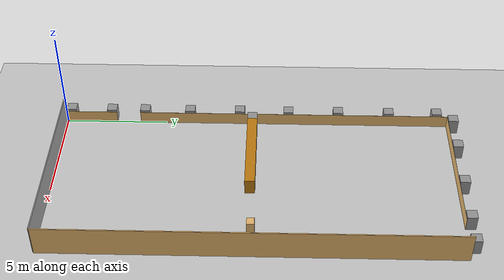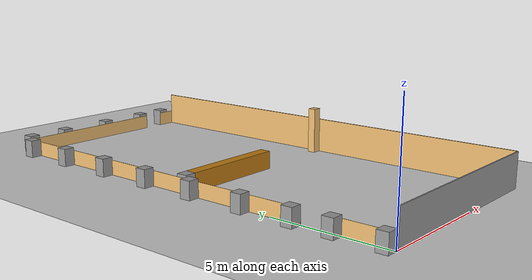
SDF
<sdf version="1.7">
 <world name="default">
  <light name="sun" type="directional">
   <pose>0 0 10 0 -0 0</pose>
   <diffuse>0.8 0.8 0.8 1</diffuse>
   <specular>0.2 0.2 0.2 1</specular>
   <attenuation>
    <range>1000</range>
    <constant>0.9</constant>
    <linear>0.01</linear>
    <quadratic>0.001</quadratic>
   </attenuation>
   <direction>-0.5 0.1 -0.9</direction>
   <spot><inner_angle>0</inner_angle><outer_angle>0</outer_angle><falloff>0</falloff></spot>
  </light>
  <model name="ground_plane">
   <static>1</static>
   <link name="link">
    <collision name="collision">
     <geometry><plane><normal>0 0 1</normal><size>100 100</size></plane></geometry>
     <surface>
      <contact><collide_bitmask>65535</collide_bitmask></contact>
      <friction><ode><mu>100</mu><mu2>50</mu2></ode></friction>
     </surface>
    </collision>
    <visual name="visual">
     <cast_shadows>0</cast_shadows>
     <geometry><plane><normal>0 0 1</normal><size>100 100</size></plane></geometry>
     <material>
      <script><uri>file://media/materials/scripts/gazebo.material</uri><name>Gazebo/Grey</name></script>
     </material>
    </visual>
   </link>
  </model>
  <gravity>0 0 -9.8</gravity>
  <magnetic_field>6e-06 2.3e-05 -4.2e-05</magnetic_field>
  <atmosphere type="adiabatic"/>
  <physics type="ode">
   <max_step_size>0.001</max_step_size>
   <real_time_factor>1</real_time_factor>
   <real_time_update_rate>1000</real_time_update_rate>
  </physics>
  <scene><ambient>0.4 0.4 0.4 1</ambient><background>0.7 0.7 0.7 1</background><shadows>1</shadows></scene>
  <spherical_coordinates>
   <surface_model>EARTH_WGS84</surface_model>
   <latitude_deg>0</latitude_deg>
   <longitude_deg>0</longitude_deg>
   <elevation>0</elevation>
   <heading_deg>0</heading_deg>
  </spherical_coordinates>
  <model name="Cardboard_Bin">
   <link name="link_0">
    <inertial>
     <mass>1</mass>
     <inertia>
      <ixx>0.166667</ixx>
      <ixy>0</ixy>
      <ixz>0</ixz>
      <iyy>0.166667</iyy>
      <iyz>0</iyz>
      <izz>0.166667</izz>
     </inertia>
    </inertial>
    <visual name="visual">
     <geometry><box><size>0.48 0.48 0.762</size></box></geometry>
     <material>
      <lighting>1</lighting>
      <script><uri>file://media/materials/scripts/gazebo.material</uri><name>Gazebo/Grey</name></script>
      <shader type="pixel"><normal_map>__default__</normal_map></shader>
      <ambient>0.953 0.953 0.953 1</ambient>
      <diffuse>0.933 0.933 0.925 1</diffuse>
      <specular>0.933 0.933 0.925 1</specular>
      <emissive>0 0 0 1</emissive>
     </material>
    </visual>
    <collision name="collision">
     <geometry><box><size>0.48 0.48 0.762</size></box></geometry>
     <surface>
      <friction>
       <ode><mu>1</mu><mu2>1</mu2><fdir1>0 0 0</fdir1><slip1>0</slip1><slip2>0</slip2></ode>
       <torsional>
        <coefficient>1</coefficient>
        <patch_radius>0</patch_radius>
        <surface_radius>0</surface_radius>
        <use_patch_radius>1</use_patch_radius>
        <ode><slip>0</slip></ode>
       </torsional>
      </friction>
      <bounce><restitution_coefficient>0</restitution_coefficient><threshold>1e+06</threshold></bounce>
      <contact>
       <collide_without_contact>0</collide_without_contact>
       <collide_without_contact_bitmask>1</collide_without_contact_bitmask>
       <collide_bitmask>1</collide_bitmask>
       <ode>
        <soft_cfm>0</soft_cfm>
        <soft_erp>0.2</soft_erp>
        <kp>1e+13</kp>
        <kd>1</kd>
        <max_vel>0.01</max_vel>
        <min_depth>0</min_depth>
       </ode>
       <bullet>
        <split_impulse>1</split_impulse>
        <split_impulse_penetration_threshold>-0.01</split_impulse_penetration_threshold>
        <soft_cfm>0</soft_cfm>
        <soft_erp>0.2</soft_erp>
        <kp>1e+13</kp>
        <kd>1</kd>
       </bullet>
      </contact>
     </surface>
    </collision>
   </link>
   <static>1</static>
   <pose>-0.244 0.24 0.381 0 -0 0</pose>
  </model>
  <model name="Cardboard_Bin_clone_11">
   <link name="link_0">
    <inertial>
     <mass>1</mass>
     <inertia>
      <ixx>0.166667</ixx>
      <ixy>0</ixy>
      <ixz>0</ixz>
      <iyy>0.166667</iyy>
      <iyz>0</iyz>
      <izz>0.166667</izz>
     </inertia>
    </inertial>
    <visual name="visual">
     <geometry><box><size>0.48 0.48 0.762</size></box></geometry>
     <material>
      <lighting>1</lighting>
      <script><uri>file://media/materials/scripts/gazebo.material</uri><name>Gazebo/Grey</name></script>
      <shader type="pixel"><normal_map>__default__</normal_map></shader>
      <ambient>0.953 0.953 0.953 1</ambient>
      <diffuse>0.933 0.933 0.925 1</diffuse>
      <specular>0.933 0.933 0.925 1</specular>
      <emissive>0 0 0 1</emissive>
     </material>
    </visual>
    <collision name="collision">
     <geometry><box><size>0.48 0.48 0.762</size></box></geometry>
     <surface>
      <friction>
       <ode><mu>1</mu><mu2>1</mu2><fdir1>0 0 0</fdir1><slip1>0</slip1><slip2>0</slip2></ode>
       <torsional>
        <coefficient>1</coefficient>
        <patch_radius>0</patch_radius>
        <surface_radius>0</surface_radius>
        <use_patch_radius>1</use_patch_radius>
        <ode><slip>0</slip></ode>
       </torsional>
      </friction>
      <bounce><restitution_coefficient>0</restitution_coefficient><threshold>1e+06</threshold></bounce>
      <contact>
       <collide_without_contact>0</collide_without_contact>
       <collide_without_contact_bitmask>1</collide_without_contact_bitmask>
       <collide_bitmask>1</collide_bitmask>
       <ode>
        <soft_cfm>0</soft_cfm>
        <soft_erp>0.2</soft_erp>
        <kp>1e+13</kp>
        <kd>1</kd>
        <max_vel>0.01</max_vel>
        <min_depth>0</min_depth>
       </ode>
       <bullet>
        <split_impulse>1</split_impulse>
        <split_impulse_penetration_threshold>-0.01</split_impulse_penetration_threshold>
        <soft_cfm>0</soft_cfm>
        <soft_erp>0.2</soft_erp>
        <kp>1e+13</kp>
        <kd>1</kd>
       </bullet>
      </contact>
     </surface>
    </collision>
   </link>
   <static>1</static>
   <pose>-0.244 2.273 0.381 0 -0 0</pose>
  </model>
  <model name="Cardboard_Bin_clone_2">
   <link name="link_0">
    <inertial>
     <mass>1</mass>
     <inertia>
      <ixx>0.166667</ixx>
      <ixy>0</ixy>
      <ixz>0</ixz>
      <iyy>0.166667</iyy>
      <iyz>0</iyz>
      <izz>0.166667</izz>
     </inertia>
    </inertial>
    <visual name="visual">
     <geometry><box><size>0.48 0.48 0.762</size></box></geometry>
     <material>
      <lighting>1</lighting>
      <script><uri>file://media/materials/scripts/gazebo.material</uri><name>Gazebo/Grey</name></script>
      <shader type="pixel"><normal_map>__default__</normal_map></shader>
      <ambient>0.953 0.953 0.953 1</ambient>
      <diffuse>0.933 0.933 0.925 1</diffuse>
      <specular>0.933 0.933 0.925 1</specular>
      <emissive>0 0 0 1</emissive>
     </material>
    </visual>
    <collision name="collision">
     <geometry><box><size>0.48 0.48 0.762</size></box></geometry>
     <surface>
      <friction>
       <ode><mu>1</mu><mu2>1</mu2><fdir1>0 0 0</fdir1><slip1>0</slip1><slip2>0</slip2></ode>
       <torsional>
        <coefficient>1</coefficient>
        <patch_radius>0</patch_radius>
        <surface_radius>0</surface_radius>
        <use_patch_radius>1</use_patch_radius>
        <ode><slip>0</slip></ode>
       </torsional>
      </friction>
      <bounce><restitution_coefficient>0</restitution_coefficient><threshold>1e+06</threshold></bounce>
      <contact>
       <collide_without_contact>0</collide_without_contact>
       <collide_without_contact_bitmask>1</collide_without_contact_bitmask>
       <collide_bitmask>1</collide_bitmask>
       <ode>
        <soft_cfm>0</soft_cfm>
        <soft_erp>0.2</soft_erp>
        <kp>1e+13</kp>
        <kd>1</kd>
        <max_vel>0.01</max_vel>
        <min_depth>0</min_depth>
       </ode>
       <bullet>
        <split_impulse>1</split_impulse>
        <split_impulse_penetration_threshold>-0.01</split_impulse_penetration_threshold>
        <soft_cfm>0</soft_cfm>
        <soft_erp>0.2</soft_erp>
        <kp>1e+13</kp>
        <kd>1</kd>
       </bullet>
      </contact>
     </surface>
    </collision>
   </link>
   <static>1</static>
   <pose>-0.244 3.938 0.381 0 -0 0</pose>
  </model>
  <model name="Cardboard_Bin_clone_12">
   <link name="link_0">
    <inertial>
     <mass>1</mass>
     <inertia>
      <ixx>0.166667</ixx>
      <ixy>0</ixy>
      <ixz>0</ixz>
      <iyy>0.166667</iyy>
      <iyz>0</iyz>
      <izz>0.166667</izz>
     </inertia>
    </inertial>
    <visual name="visual">
     <geometry><box><size>0.48 0.48 0.762</size></box></geometry>
     <material>
      <lighting>1</lighting>
      <script><uri>file://media/materials/scripts/gazebo.material</uri><name>Gazebo/Grey</name></script>
      <shader type="pixel"><normal_map>__default__</normal_map></shader>
      <ambient>0.953 0.953 0.953 1</ambient>
      <diffuse>0.933 0.933 0.925 1</diffuse>
      <specular>0.933 0.933 0.925 1</specular>
      <emissive>0 0 0 1</emissive>
     </material>
    </visual>
    <collision name="collision">
     <geometry><box><size>0.48 0.48 0.762</size></box></geometry>
     <surface>
      <friction>
       <ode><mu>1</mu><mu2>1</mu2><fdir1>0 0 0</fdir1><slip1>0</slip1><slip2>0</slip2></ode>
       <torsional>
        <coefficient>1</coefficient>
        <patch_radius>0</patch_radius>
        <surface_radius>0</surface_radius>
        <use_patch_radius>1</use_patch_radius>
        <ode><slip>0</slip></ode>
       </torsional>
      </friction>
      <bounce><restitution_coefficient>0</restitution_coefficient><threshold>1e+06</threshold></bounce>
      <contact>
       <collide_without_contact>0</collide_without_contact>
       <collide_without_contact_bitmask>1</collide_without_contact_bitmask>
       <collide_bitmask>1</collide_bitmask>
       <ode>
        <soft_cfm>0</soft_cfm>
        <soft_erp>0.2</soft_erp>
        <kp>1e+13</kp>
        <kd>1</kd>
        <max_vel>0.01</max_vel>
        <min_depth>0</min_depth>
       </ode>
       <bullet>
        <split_impulse>1</split_impulse>
        <split_impulse_penetration_threshold>-0.01</split_impulse_penetration_threshold>
        <soft_cfm>0</soft_cfm>
        <soft_erp>0.2</soft_erp>
        <kp>1e+13</kp>
        <kd>1</kd>
       </bullet>
      </contact>
     </surface>
    </collision>
   </link>
   <static>1</static>
   <pose>-0.244 6.207 0.381 0 -0 0</pose>
  </model>
  <model name="Cardboard_Bin_clone_13">
   <link name="link_0">
    <inertial>
     <mass>1</mass>
     <inertia>
      <ixx>0.166667</ixx>
      <ixy>0</ixy>
      <ixz>0</ixz>
      <iyy>0.166667</iyy>
      <iyz>0</iyz>
      <izz>0.166667</izz>
     </inertia>
    </inertial>
    <visual name="visual">
     <geometry><box><size>0.48 0.48 0.762</size></box></geometry>
     <material>
      <lighting>1</lighting>
      <script><uri>file://media/materials/scripts/gazebo.material</uri><name>Gazebo/Grey</name></script>
      <shader type="pixel"><normal_map>__default__</normal_map></shader>
      <ambient>0.953 0.953 0.953 1</ambient>
      <diffuse>0.933 0.933 0.925 1</diffuse>
      <specular>0.933 0.933 0.925 1</specular>
      <emissive>0 0 0 1</emissive>
     </material>
    </visual>
    <collision name="collision">
     <geometry><box><size>0.48 0.48 0.762</size></box></geometry>
     <surface>
      <friction>
       <ode><mu>1</mu><mu2>1</mu2><fdir1>0 0 0</fdir1><slip1>0</slip1><slip2>0</slip2></ode>
       <torsional>
        <coefficient>1</coefficient>
        <patch_radius>0</patch_radius>
        <surface_radius>0</surface_radius>
        <use_patch_radius>1</use_patch_radius>
        <ode><slip>0</slip></ode>
       </torsional>
      </friction>
      <bounce><restitution_coefficient>0</restitution_coefficient><threshold>1e+06</threshold></bounce>
      <contact>
       <collide_without_contact>0</collide_without_contact>
       <collide_without_contact_bitmask>1</collide_without_contact_bitmask>
       <collide_bitmask>1</collide_bitmask>
       <ode>
        <soft_cfm>0</soft_cfm>
        <soft_erp>0.2</soft_erp>
        <kp>1e+13</kp>
        <kd>1</kd>
        <max_vel>0.01</max_vel>
        <min_depth>0</min_depth>
       </ode>
       <bullet>
        <split_impulse>1</split_impulse>
        <split_impulse_penetration_threshold>-0.01</split_impulse_penetration_threshold>
        <soft_cfm>0</soft_cfm>
        <soft_erp>0.2</soft_erp>
        <kp>1e+13</kp>
        <kd>1</kd>
       </bullet>
      </contact>
     </surface>
    </collision>
   </link>
   <static>1</static>
   <pose>-0.244 8.702 0.381 0 -0 0</pose>
  </model>
  <model name="Cardboard_Bin_clone_14">
   <link name="link_0">
    <inertial>
     <mass>1</mass>
     <inertia>
      <ixx>0.166667</ixx>
      <ixy>0</ixy>
      <ixz>0</ixz>
      <iyy>0.166667</iyy>
      <iyz>0</iyz>
      <izz>0.166667</izz>
     </inertia>
    </inertial>
    <visual name="visual">
     <geometry><box><size>0.48 0.48 0.762</size></box></geometry>
     <material>
      <lighting>1</lighting>
      <script><uri>file://media/materials/scripts/gazebo.material</uri><name>Gazebo/Grey</name></script>
      <shader type="pixel"><normal_map>__default__</normal_map></shader>
      <ambient>0.953 0.953 0.953 1</ambient>
      <diffuse>0.933 0.933 0.925 1</diffuse>
      <specular>0.933 0.933 0.925 1</specular>
      <emissive>0 0 0 1</emissive>
     </material>
    </visual>
    <collision name="collision">
     <geometry><box><size>0.48 0.48 0.762</size></box></geometry>
     <surface>
      <friction>
       <ode><mu>1</mu><mu2>1</mu2><fdir1>0 0 0</fdir1><slip1>0</slip1><slip2>0</slip2></ode>
       <torsional>
        <coefficient>1</coefficient>
        <patch_radius>0</patch_radius>
        <surface_radius>0</surface_radius>
        <use_patch_radius>1</use_patch_radius>
        <ode><slip>0</slip></ode>
       </torsional>
      </friction>
      <bounce><restitution_coefficient>0</restitution_coefficient><threshold>1e+06</threshold></bounce>
      <contact>
       <collide_without_contact>0</collide_without_contact>
       <collide_without_contact_bitmask>1</collide_without_contact_bitmask>
       <collide_bitmask>1</collide_bitmask>
       <ode>
        <soft_cfm>0</soft_cfm>
        <soft_erp>0.2</soft_erp>
        <kp>1e+13</kp>
        <kd>1</kd>
        <max_vel>0.01</max_vel>
        <min_depth>0</min_depth>
       </ode>
       <bullet>
        <split_impulse>1</split_impulse>
        <split_impulse_penetration_threshold>-0.01</split_impulse_penetration_threshold>
        <soft_cfm>0</soft_cfm>
        <soft_erp>0.2</soft_erp>
        <kp>1e+13</kp>
        <kd>1</kd>
       </bullet>
      </contact>
     </surface>
    </collision>
   </link>
   <static>1</static>
   <pose>-0.244 11.143 0.381 0 -0 0</pose>
  </model>
  <model name="Cardboard_Bin_clone_6">
   <link name="link_0">
    <inertial>
     <mass>1</mass>
     <inertia>
      <ixx>0.166667</ixx>
      <ixy>0</ixy>
      <ixz>0</ixz>
      <iyy>0.166667</iyy>
      <iyz>0</iyz>
      <izz>0.166667</izz>
     </inertia>
    </inertial>
    <visual name="visual">
     <geometry><box><size>0.48 0.48 0.762</size></box></geometry>
     <material>
      <lighting>1</lighting>
      <script><uri>file://media/materials/scripts/gazebo.material</uri><name>Gazebo/Grey</name></script>
      <shader type="pixel"><normal_map>__default__</normal_map></shader>
      <ambient>0.953 0.953 0.953 1</ambient>
      <diffuse>0.933 0.933 0.925 1</diffuse>
      <specular>0.933 0.933 0.925 1</specular>
      <emissive>0 0 0 1</emissive>
     </material>
    </visual>
    <collision name="collision">
     <geometry><box><size>0.48 0.48 0.762</size></box></geometry>
     <surface>
      <friction>
       <ode><mu>1</mu><mu2>1</mu2><fdir1>0 0 0</fdir1><slip1>0</slip1><slip2>0</slip2></ode>
       <torsional>
        <coefficient>1</coefficient>
        <patch_radius>0</patch_radius>
        <surface_radius>0</surface_radius>
        <use_patch_radius>1</use_patch_radius>
        <ode><slip>0</slip></ode>
       </torsional>
      </friction>
      <bounce><restitution_coefficient>0</restitution_coefficient><threshold>1e+06</threshold></bounce>
      <contact>
       <collide_without_contact>0</collide_without_contact>
       <collide_without_contact_bitmask>1</collide_without_contact_bitmask>
       <collide_bitmask>1</collide_bitmask>
       <ode>
        <soft_cfm>0</soft_cfm>
        <soft_erp>0.2</soft_erp>
        <kp>1e+13</kp>
        <kd>1</kd>
        <max_vel>0.01</max_vel>
        <min_depth>0</min_depth>
       </ode>
       <bullet>
        <split_impulse>1</split_impulse>
        <split_impulse_penetration_threshold>-0.01</split_impulse_penetration_threshold>
        <soft_cfm>0</soft_cfm>
        <soft_erp>0.2</soft_erp>
        <kp>1e+13</kp>
        <kd>1</kd>
       </bullet>
      </contact>
     </surface>
    </collision>
   </link>
   <static>1</static>
   <pose>-0.244 13.627 0.381 0 -0 0</pose>
  </model>
  <model name="Cardboard_Bin_clone_5">
   <link name="link_0">
    <inertial>
     <mass>1</mass>
     <inertia>
      <ixx>0.166667</ixx>
      <ixy>0</ixy>
      <ixz>0</ixz>
      <iyy>0.166667</iyy>
      <iyz>0</iyz>
      <izz>0.166667</izz>
     </inertia>
    </inertial>
    <visual name="visual">
     <geometry><box><size>0.48 0.48 0.762</size></box></geometry>
     <material>
      <lighting>1</lighting>
      <script><uri>file://media/materials/scripts/gazebo.material</uri><name>Gazebo/Grey</name></script>
      <shader type="pixel"><normal_map>__default__</normal_map></shader>
      <ambient>0.953 0.953 0.953 1</ambient>
      <diffuse>0.933 0.933 0.925 1</diffuse>
      <specular>0.933 0.933 0.925 1</specular>
      <emissive>0 0 0 1</emissive>
     </material>
    </visual>
    <collision name="collision">
     <geometry><box><size>0.48 0.48 0.762</size></box></geometry>
     <surface>
      <friction>
       <ode><mu>1</mu><mu2>1</mu2><fdir1>0 0 0</fdir1><slip1>0</slip1><slip2>0</slip2></ode>
       <torsional>
        <coefficient>1</coefficient>
        <patch_radius>0</patch_radius>
        <surface_radius>0</surface_radius>
        <use_patch_radius>1</use_patch_radius>
        <ode><slip>0</slip></ode>
       </torsional>
      </friction>
      <bounce><restitution_coefficient>0</restitution_coefficient><threshold>1e+06</threshold></bounce>
      <contact>
       <collide_without_contact>0</collide_without_contact>
       <collide_without_contact_bitmask>1</collide_without_contact_bitmask>
       <collide_bitmask>1</collide_bitmask>
       <ode>
        <soft_cfm>0</soft_cfm>
        <soft_erp>0.2</soft_erp>
        <kp>1e+13</kp>
        <kd>1</kd>
        <max_vel>0.01</max_vel>
        <min_depth>0</min_depth>
       </ode>
       <bullet>
        <split_impulse>1</split_impulse>
        <split_impulse_penetration_threshold>-0.01</split_impulse_penetration_threshold>
        <soft_cfm>0</soft_cfm>
        <soft_erp>0.2</soft_erp>
        <kp>1e+13</kp>
        <kd>1</kd>
       </bullet>
      </contact>
     </surface>
    </collision>
   </link>
   <static>1</static>
   <pose>-0.244 16.151 0.381 0 -0 0</pose>
  </model>
  <model name="Cardboard_Bin_clone_4">
   <link name="link_0">
    <inertial>
     <mass>1</mass>
     <inertia>
      <ixx>0.166667</ixx>
      <ixy>0</ixy>
      <ixz>0</ixz>
      <iyy>0.166667</iyy>
      <iyz>0</iyz>
      <izz>0.166667</izz>
     </inertia>
    </inertial>
    <visual name="visual">
     <geometry><box><size>0.48 0.48 0.762</size></box></geometry>
     <material>
      <lighting>1</lighting>
      <script><uri>file://media/materials/scripts/gazebo.material</uri><name>Gazebo/Grey</name></script>
      <shader type="pixel"><normal_map>__default__</normal_map></shader>
      <ambient>0.953 0.953 0.953 1</ambient>
      <diffuse>0.933 0.933 0.925 1</diffuse>
      <specular>0.933 0.933 0.925 1</specular>
      <emissive>0 0 0 1</emissive>
     </material>
    </visual>
    <collision name="collision">
     <geometry><box><size>0.48 0.48 0.762</size></box></geometry>
     <surface>
      <friction>
       <ode><mu>1</mu><mu2>1</mu2><fdir1>0 0 0</fdir1><slip1>0</slip1><slip2>0</slip2></ode>
       <torsional>
        <coefficient>1</coefficient>
        <patch_radius>0</patch_radius>
        <surface_radius>0</surface_radius>
        <use_patch_radius>1</use_patch_radius>
        <ode><slip>0</slip></ode>
       </torsional>
      </friction>
      <bounce><restitution_coefficient>0</restitution_coefficient><threshold>1e+06</threshold></bounce>
      <contact>
       <collide_without_contact>0</collide_without_contact>
       <collide_without_contact_bitmask>1</collide_without_contact_bitmask>
       <collide_bitmask>1</collide_bitmask>
       <ode>
        <soft_cfm>0</soft_cfm>
        <soft_erp>0.2</soft_erp>
        <kp>1e+13</kp>
        <kd>1</kd>
        <max_vel>0.01</max_vel>
        <min_depth>0</min_depth>
       </ode>
       <bullet>
        <split_impulse>1</split_impulse>
        <split_impulse_penetration_threshold>-0.01</split_impulse_penetration_threshold>
        <soft_cfm>0</soft_cfm>
        <soft_erp>0.2</soft_erp>
        <kp>1e+13</kp>
        <kd>1</kd>
       </bullet>
      </contact>
     </surface>
    </collision>
   </link>
   <static>1</static>
   <pose>-0.244 18.549 0.381 0 -0 0</pose>
  </model>
  <model name="Cardboard_Bin_clone_3">
   <link name="link_0">
    <inertial>
     <mass>1</mass>
     <inertia>
      <ixx>0.166667</ixx>
      <ixy>0</ixy>
      <ixz>0</ixz>
      <iyy>0.166667</iyy>
      <iyz>0</iyz>
      <izz>0.166667</izz>
     </inertia>
    </inertial>
    <visual name="visual">
     <geometry><box><size>0.48 0.48 0.762</size></box></geometry>
     <material>
      <lighting>1</lighting>
      <script><uri>file://media/materials/scripts/gazebo.material</uri><name>Gazebo/Grey</name></script>
      <shader type="pixel"><normal_map>__default__</normal_map></shader>
      <ambient>0.953 0.953 0.953 1</ambient>
      <diffuse>0.933 0.933 0.925 1</diffuse>
      <specular>0.933 0.933 0.925 1</specular>
      <emissive>0 0 0 1</emissive>
     </material>
    </visual>
    <collision name="collision">
     <geometry><box><size>0.48 0.48 0.762</size></box></geometry>
     <surface>
      <friction>
       <ode><mu>1</mu><mu2>1</mu2><fdir1>0 0 0</fdir1><slip1>0</slip1><slip2>0</slip2></ode>
       <torsional>
        <coefficient>1</coefficient>
        <patch_radius>0</patch_radius>
        <surface_radius>0</surface_radius>
        <use_patch_radius>1</use_patch_radius>
        <ode><slip>0</slip></ode>
       </torsional>
      </friction>
      <bounce><restitution_coefficient>0</restitution_coefficient><threshold>1e+06</threshold></bounce>
      <contact>
       <collide_without_contact>0</collide_without_contact>
       <collide_without_contact_bitmask>1</collide_without_contact_bitmask>
       <collide_bitmask>1</collide_bitmask>
       <ode>
        <soft_cfm>0</soft_cfm>
        <soft_erp>0.2</soft_erp>
        <kp>1e+13</kp>
        <kd>1</kd>
        <max_vel>0.01</max_vel>
        <min_depth>0</min_depth>
       </ode>
       <bullet>
        <split_impulse>1</split_impulse>
        <split_impulse_penetration_threshold>-0.01</split_impulse_penetration_threshold>
        <soft_cfm>0</soft_cfm>
        <soft_erp>0.2</soft_erp>
        <kp>1e+13</kp>
        <kd>1</kd>
       </bullet>
      </contact>
     </surface>
    </collision>
   </link>
   <static>1</static>
   <pose>0.24 19.324 0.381 0 -0 0</pose>
  </model>
  <model name="Cardboard_Bin_clone_1">
   <link name="link_0">
    <inertial>
     <mass>1</mass>
     <inertia>
      <ixx>0.166667</ixx>
      <ixy>0</ixy>
      <ixz>0</ixz>
      <iyy>0.166667</iyy>
      <iyz>0</iyz>
      <izz>0.166667</izz>
     </inertia>
    </inertial>
    <visual name="visual">
     <geometry><box><size>0.48 0.48 0.762</size></box></geometry>
     <material>
      <lighting>1</lighting>
      <script><uri>file://media/materials/scripts/gazebo.material</uri><name>Gazebo/Grey</name></script>
      <shader type="pixel"><normal_map>__default__</normal_map></shader>
      <ambient>0.953 0.953 0.953 1</ambient>
      <diffuse>0.933 0.933 0.925 1</diffuse>
      <specular>0.933 0.933 0.925 1</specular>
      <emissive>0 0 0 1</emissive>
     </material>
    </visual>
    <collision name="collision">
     <geometry><box><size>0.48 0.48 0.762</size></box></geometry>
     <surface>
      <friction>
       <ode><mu>1</mu><mu2>1</mu2><fdir1>0 0 0</fdir1><slip1>0</slip1><slip2>0</slip2></ode>
       <torsional>
        <coefficient>1</coefficient>
        <patch_radius>0</patch_radius>
        <surface_radius>0</surface_radius>
        <use_patch_radius>1</use_patch_radius>
        <ode><slip>0</slip></ode>
       </torsional>
      </friction>
      <bounce><restitution_coefficient>0</restitution_coefficient><threshold>1e+06</threshold></bounce>
      <contact>
       <collide_without_contact>0</collide_without_contact>
       <collide_without_contact_bitmask>1</collide_without_contact_bitmask>
       <collide_bitmask>1</collide_bitmask>
       <ode>
        <soft_cfm>0</soft_cfm>
        <soft_erp>0.2</soft_erp>
        <kp>1e+13</kp>
        <kd>1</kd>
        <max_vel>0.01</max_vel>
        <min_depth>0</min_depth>
       </ode>
       <bullet>
        <split_impulse>1</split_impulse>
        <split_impulse_penetration_threshold>-0.01</split_impulse_penetration_threshold>
        <soft_cfm>0</soft_cfm>
        <soft_erp>0.2</soft_erp>
        <kp>1e+13</kp>
        <kd>1</kd>
       </bullet>
      </contact>
     </surface>
    </collision>
   </link>
   <static>1</static>
   <pose>2.104 19.324 0.381 0 -0 0</pose>
  </model>
  <model name="Cardboard_Bin_clone_7">
   <link name="link_0">
    <inertial>
     <mass>1</mass>
     <inertia>
      <ixx>0.166667</ixx>
      <ixy>0</ixy>
      <ixz>0</ixz>
      <iyy>0.166667</iyy>
      <iyz>0</iyz>
      <izz>0.166667</izz>
     </inertia>
    </inertial>
    <visual name="visual">
     <geometry><box><size>0.48 0.48 0.762</size></box></geometry>
     <material>
      <lighting>1</lighting>
      <script><uri>file://media/materials/scripts/gazebo.material</uri><name>Gazebo/Grey</name></script>
      <shader type="pixel"><normal_map>__default__</normal_map></shader>
      <ambient>0.953 0.953 0.953 1</ambient>
      <diffuse>0.933 0.933 0.925 1</diffuse>
      <specular>0.933 0.933 0.925 1</specular>
      <emissive>0 0 0 1</emissive>
     </material>
    </visual>
    <collision name="collision">
     <geometry><box><size>0.48 0.48 0.762</size></box></geometry>
     <surface>
      <friction>
       <ode><mu>1</mu><mu2>1</mu2><fdir1>0 0 0</fdir1><slip1>0</slip1><slip2>0</slip2></ode>
       <torsional>
        <coefficient>1</coefficient>
        <patch_radius>0</patch_radius>
        <surface_radius>0</surface_radius>
        <use_patch_radius>1</use_patch_radius>
        <ode><slip>0</slip></ode>
       </torsional>
      </friction>
      <bounce><restitution_coefficient>0</restitution_coefficient><threshold>1e+06</threshold></bounce>
      <contact>
       <collide_without_contact>0</collide_without_contact>
       <collide_without_contact_bitmask>1</collide_without_contact_bitmask>
       <collide_bitmask>1</collide_bitmask>
       <ode>
        <soft_cfm>0</soft_cfm>
        <soft_erp>0.2</soft_erp>
        <kp>1e+13</kp>
        <kd>1</kd>
        <max_vel>0.01</max_vel>
        <min_depth>0</min_depth>
       </ode>
       <bullet>
        <split_impulse>1</split_impulse>
        <split_impulse_penetration_threshold>-0.01</split_impulse_penetration_threshold>
        <soft_cfm>0</soft_cfm>
        <soft_erp>0.2</soft_erp>
        <kp>1e+13</kp>
        <kd>1</kd>
       </bullet>
      </contact>
     </surface>
    </collision>
   </link>
   <static>1</static>
   <pose>4.583 19.324 0.381 0 -0 0</pose>
  </model>
  <model name="Cardboard_Bin_clone_8">
   <link name="link_0">
    <inertial>
     <mass>1</mass>
     <inertia>
      <ixx>0.166667</ixx>
      <ixy>0</ixy>
      <ixz>0</ixz>
      <iyy>0.166667</iyy>
      <iyz>0</iyz>
      <izz>0.166667</izz>
     </inertia>
    </inertial>
    <visual name="visual">
     <geometry><box><size>0.48 0.48 0.762</size></box></geometry>
     <material>
      <lighting>1</lighting>
      <script><uri>file://media/materials/scripts/gazebo.material</uri><name>Gazebo/Grey</name></script>
      <shader type="pixel"><normal_map>__default__</normal_map></shader>
      <ambient>0.953 0.953 0.953 1</ambient>
      <diffuse>0.933 0.933 0.925 1</diffuse>
      <specular>0.933 0.933 0.925 1</specular>
      <emissive>0 0 0 1</emissive>
     </material>
    </visual>
    <collision name="collision">
     <geometry><box><size>0.48 0.48 0.762</size></box></geometry>
     <surface>
      <friction>
       <ode><mu>1</mu><mu2>1</mu2><fdir1>0 0 0</fdir1><slip1>0</slip1><slip2>0</slip2></ode>
       <torsional>
        <coefficient>1</coefficient>
        <patch_radius>0</patch_radius>
        <surface_radius>0</surface_radius>
        <use_patch_radius>1</use_patch_radius>
        <ode><slip>0</slip></ode>
       </torsional>
      </friction>
      <bounce><restitution_coefficient>0</restitution_coefficient><threshold>1e+06</threshold></bounce>
      <contact>
       <collide_without_contact>0</collide_without_contact>
       <collide_without_contact_bitmask>1</collide_without_contact_bitmask>
       <collide_bitmask>1</collide_bitmask>
       <ode>
        <soft_cfm>0</soft_cfm>
        <soft_erp>0.2</soft_erp>
        <kp>1e+13</kp>
        <kd>1</kd>
        <max_vel>0.01</max_vel>
        <min_depth>0</min_depth>
       </ode>
       <bullet>
        <split_impulse>1</split_impulse>
        <split_impulse_penetration_threshold>-0.01</split_impulse_penetration_threshold>
        <soft_cfm>0</soft_cfm>
        <soft_erp>0.2</soft_erp>
        <kp>1e+13</kp>
        <kd>1</kd>
       </bullet>
      </contact>
     </surface>
    </collision>
   </link>
   <static>1</static>
   <pose>6.853 19.324 0.381 0 -0 0</pose>
  </model>
  <model name="Cardboard_Bin_clone_9">
   <link name="link_0">
    <inertial>
     <mass>1</mass>
     <inertia>
      <ixx>0.166667</ixx>
      <ixy>0</ixy>
      <ixz>0</ixz>
      <iyy>0.166667</iyy>
      <iyz>0</iyz>
      <izz>0.166667</izz>
     </inertia>
    </inertial>
    <visual name="visual">
     <geometry><box><size>0.48 0.48 0.762</size></box></geometry>
     <material>
      <lighting>1</lighting>
      <script><uri>file://media/materials/scripts/gazebo.material</uri><name>Gazebo/Grey</name></script>
      <shader type="pixel"><normal_map>__default__</normal_map></shader>
      <ambient>0.953 0.953 0.953 1</ambient>
      <diffuse>0.933 0.933 0.925 1</diffuse>
      <specular>0.933 0.933 0.925 1</specular>
      <emissive>0 0 0 1</emissive>
     </material>
    </visual>
    <collision name="collision">
     <geometry><box><size>0.48 0.48 0.762</size></box></geometry>
     <surface>
      <friction>
       <ode><mu>1</mu><mu2>1</mu2><fdir1>0 0 0</fdir1><slip1>0</slip1><slip2>0</slip2></ode>
       <torsional>
        <coefficient>1</coefficient>
        <patch_radius>0</patch_radius>
        <surface_radius>0</surface_radius>
        <use_patch_radius>1</use_patch_radius>
        <ode><slip>0</slip></ode>
       </torsional>
      </friction>
      <bounce><restitution_coefficient>0</restitution_coefficient><threshold>1e+06</threshold></bounce>
      <contact>
       <collide_without_contact>0</collide_without_contact>
       <collide_without_contact_bitmask>1</collide_without_contact_bitmask>
       <collide_bitmask>1</collide_bitmask>
       <ode>
        <soft_cfm>0</soft_cfm>
        <soft_erp>0.2</soft_erp>
        <kp>1e+13</kp>
        <kd>1</kd>
        <max_vel>0.01</max_vel>
        <min_depth>0</min_depth>
       </ode>
       <bullet>
        <split_impulse>1</split_impulse>
        <split_impulse_penetration_threshold>-0.01</split_impulse_penetration_threshold>
        <soft_cfm>0</soft_cfm>
        <soft_erp>0.2</soft_erp>
        <kp>1e+13</kp>
        <kd>1</kd>
       </bullet>
      </contact>
     </surface>
    </collision>
   </link>
   <static>1</static>
   <pose>6.853 19.324 0.381 0 -0 0</pose>
  </model>
  <model name="Cardboard_Bin_clone_10">
   <link name="link_0">
    <inertial>
     <mass>1</mass>
     <inertia>
      <ixx>0.166667</ixx>
      <ixy>0</ixy>
      <ixz>0</ixz>
      <iyy>0.166667</iyy>
      <iyz>0</iyz>
      <izz>0.166667</izz>
     </inertia>
    </inertial>
    <visual name="visual">
     <geometry><box><size>0.48 0.48 0.762</size></box></geometry>
     <material>
      <lighting>1</lighting>
      <script><uri>file://media/materials/scripts/gazebo.material</uri><name>Gazebo/Grey</name></script>
      <shader type="pixel"><normal_map>__default__</normal_map></shader>
      <ambient>0.953 0.953 0.953 1</ambient>
      <diffuse>0.933 0.933 0.925 1</diffuse>
      <specular>0.933 0.933 0.925 1</specular>
      <emissive>0 0 0 1</emissive>
     </material>
    </visual>
    <collision name="collision">
     <geometry><box><size>0.48 0.48 0.762</size></box></geometry>
     <surface>
      <friction>
       <ode><mu>1</mu><mu2>1</mu2><fdir1>0 0 0</fdir1><slip1>0</slip1><slip2>0</slip2></ode>
       <torsional>
        <coefficient>1</coefficient>
        <patch_radius>0</patch_radius>
        <surface_radius>0</surface_radius>
        <use_patch_radius>1</use_patch_radius>
        <ode><slip>0</slip></ode>
       </torsional>
      </friction>
      <bounce><restitution_coefficient>0</restitution_coefficient><threshold>1e+06</threshold></bounce>
      <contact>
       <collide_without_contact>0</collide_without_contact>
       <collide_without_contact_bitmask>1</collide_without_contact_bitmask>
       <collide_bitmask>1</collide_bitmask>
       <ode>
        <soft_cfm>0</soft_cfm>
        <soft_erp>0.2</soft_erp>
        <kp>1e+13</kp>
        <kd>1</kd>
        <max_vel>0.01</max_vel>
        <min_depth>0</min_depth>
       </ode>
       <bullet>
        <split_impulse>1</split_impulse>
        <split_impulse_penetration_threshold>-0.01</split_impulse_penetration_threshold>
        <soft_cfm>0</soft_cfm>
        <soft_erp>0.2</soft_erp>
        <kp>1e+13</kp>
        <kd>1</kd>
       </bullet>
      </contact>
     </surface>
    </collision>
   </link>
   <static>1</static>
   <pose>8.276 19.324 0.381 0 -0 0</pose>
  </model>
  <model name="Cardboard_Bin_clone_15">
   <link name="link_0">
    <inertial>
     <mass>1</mass>
     <inertia>
      <ixx>0.166667</ixx>
      <ixy>0</ixy>
      <ixz>0</ixz>
      <iyy>0.166667</iyy>
      <iyz>0</iyz>
      <izz>0.166667</izz>
     </inertia>
    </inertial>
    <visual name="visual">
     <geometry><box><size>0.48 0.48 0.762</size></box></geometry>
     <material>
      <lighting>1</lighting>
      <script><uri>file://media/materials/scripts/gazebo.material</uri><name>Gazebo/Grey</name></script>
      <shader type="pixel"><normal_map>__default__</normal_map></shader>
      <ambient>0.953 0.953 0.953 1</ambient>
      <diffuse>0.933 0.933 0.925 1</diffuse>
      <specular>0.933 0.933 0.925 1</specular>
      <emissive>0 0 0 1</emissive>
     </material>
    </visual>
    <collision name="collision">
     <geometry><box><size>0.48 0.48 0.762</size></box></geometry>
     <surface>
      <friction>
       <ode><mu>1</mu><mu2>1</mu2><fdir1>0 0 0</fdir1><slip1>0</slip1><slip2>0</slip2></ode>
       <torsional>
        <coefficient>1</coefficient>
        <patch_radius>0</patch_radius>
        <surface_radius>0</surface_radius>
        <use_patch_radius>1</use_patch_radius>
        <ode><slip>0</slip></ode>
       </torsional>
      </friction>
      <bounce><restitution_coefficient>0</restitution_coefficient><threshold>1e+06</threshold></bounce>
      <contact>
       <collide_without_contact>0</collide_without_contact>
       <collide_without_contact_bitmask>1</collide_without_contact_bitmask>
       <collide_bitmask>1</collide_bitmask>
       <ode>
        <soft_cfm>0</soft_cfm>
        <soft_erp>0.2</soft_erp>
        <kp>1e+13</kp>
        <kd>1</kd>
        <max_vel>0.01</max_vel>
        <min_depth>0</min_depth>
       </ode>
       <bullet>
        <split_impulse>1</split_impulse>
        <split_impulse_penetration_threshold>-0.01</split_impulse_penetration_threshold>
        <soft_cfm>0</soft_cfm>
        <soft_erp>0.2</soft_erp>
        <kp>1e+13</kp>
        <kd>1</kd>
       </bullet>
      </contact>
     </surface>
    </collision>
   </link>
   <static>1</static>
   <pose>0.244 9.344 0.381 0 -0 0</pose>
  </model>
  <model name="Cardboard_Bin_clone_0">
   <link name="link_0">
    <inertial>
     <mass>1</mass>
     <inertia>
      <ixx>0.166667</ixx>
      <ixy>0</ixy>
      <ixz>0</ixz>
      <iyy>0.166667</iyy>
      <iyz>0</iyz>
      <izz>0.166667</izz>
     </inertia>
    </inertial>
    <visual name="visual">
     <geometry><box><size>0.48 0.48 0.762</size></box></geometry>
     <material>
      <lighting>1</lighting>
      <script><uri>file://media/materials/scripts/gazebo.material</uri><name>Gazebo/Grey</name></script>
      <shader type="pixel"><normal_map>__default__</normal_map></shader>
      <ambient>0.953 0.953 0.953 1</ambient>
      <diffuse>0.933 0.933 0.925 1</diffuse>
      <specular>0.933 0.933 0.925 1</specular>
      <emissive>0 0 0 1</emissive>
     </material>
    </visual>
    <collision name="collision">
     <geometry><box><size>0.48 0.48 0.762</size></box></geometry>
     <surface>
      <friction>
       <ode><mu>1</mu><mu2>1</mu2><fdir1>0 0 0</fdir1><slip1>0</slip1><slip2>0</slip2></ode>
       <torsional>
        <coefficient>1</coefficient>
        <patch_radius>0</patch_radius>
        <surface_radius>0</surface_radius>
        <use_patch_radius>1</use_patch_radius>
        <ode><slip>0</slip></ode>
       </torsional>
      </friction>
      <bounce><restitution_coefficient>0</restitution_coefficient><threshold>1e+06</threshold></bounce>
      <contact>
       <collide_without_contact>0</collide_without_contact>
       <collide_without_contact_bitmask>1</collide_without_contact_bitmask>
       <collide_bitmask>1</collide_bitmask>
       <ode>
        <soft_cfm>0</soft_cfm>
        <soft_erp>0.2</soft_erp>
        <kp>1e+13</kp>
        <kd>1</kd>
        <max_vel>0.01</max_vel>
        <min_depth>0</min_depth>
       </ode>
       <bullet>
        <split_impulse>1</split_impulse>
        <split_impulse_penetration_threshold>-0.01</split_impulse_penetration_threshold>
        <soft_cfm>0</soft_cfm>
        <soft_erp>0.2</soft_erp>
        <kp>1e+13</kp>
        <kd>1</kd>
       </bullet>
      </contact>
     </surface>
    </collision>
   </link>
   <static>1</static>
   <pose>8.64 0.24 0.381 0 -0 0</pose>
  </model>
  <model name="Cardboard_Wall_1">
   <link name="link_1">
    <inertial>
     <mass>1</mass>
     <inertia>
      <ixx>0.166667</ixx>
      <ixy>0</ixy>
      <ixz>0</ixz>
      <iyy>0.166667</iyy>
      <iyz>0</iyz>
      <izz>0.166667</izz>
     </inertia>
    </inertial>
    <visual name="visual">
     <geometry><box><size>7.093 0.004 0.635</size></box></geometry>
     <material>
      <lighting>1</lighting>
      <script><uri>file://media/materials/scripts/gazebo.material</uri><name>Gazebo/Grey</name></script>
      <shader type="pixel"><normal_map>__default__</normal_map></shader>
      <ambient>0.914 0.725 0.431 1</ambient>
      <diffuse>0.914 0.725 0.431 1</diffuse>
      <specular>0.914 0.725 0.431 1</specular>
      <emissive>0 0 0 1</emissive>
     </material>
    </visual>
    <collision name="collision">
     <geometry><box><size>7.093 0.004 0.635</size></box></geometry>
     <surface>
      <friction>
       <ode><mu>1</mu><mu2>1</mu2><fdir1>0 0 0</fdir1><slip1>0</slip1><slip2>0</slip2></ode>
       <torsional>
        <coefficient>1</coefficient>
        <patch_radius>0</patch_radius>
        <surface_radius>0</surface_radius>
        <use_patch_radius>1</use_patch_radius>
        <ode><slip>0</slip></ode>
       </torsional>
      </friction>
      <bounce><restitution_coefficient>0</restitution_coefficient><threshold>1e+06</threshold></bounce>
      <contact>
       <collide_without_contact>0</collide_without_contact>
       <collide_without_contact_bitmask>1</collide_without_contact_bitmask>
       <collide_bitmask>1</collide_bitmask>
       <ode>
        <soft_cfm>0</soft_cfm>
        <soft_erp>0.2</soft_erp>
        <kp>1e+13</kp>
        <kd>1</kd>
        <max_vel>0.01</max_vel>
        <min_depth>0</min_depth>
       </ode>
       <bullet>
        <split_impulse>1</split_impulse>
        <split_impulse_penetration_threshold>-0.01</split_impulse_penetration_threshold>
        <soft_cfm>0</soft_cfm>
        <soft_erp>0.2</soft_erp>
        <kp>1e+13</kp>
        <kd>1</kd>
       </bullet>
      </contact>
     </surface>
    </collision>
   </link>
   <static>1</static>
   <pose>3.5465 19.082 0.3175 0 -0 0</pose>
  </model>
  <model name="Cardboard_Wall_2">
   <link name="link_5">
    <inertial>
     <mass>1</mass>
     <inertia>
      <ixx>0.166667</ixx>
      <ixy>0</ixy>
      <ixz>0</ixz>
      <iyy>0.166667</iyy>
      <iyz>0</iyz>
      <izz>0.166667</izz>
     </inertia>
    </inertial>
    <visual name="visual">
     <geometry><box><size>0.845 0.004 0.635</size></box></geometry>
     <material>
      <lighting>1</lighting>
      <script><uri>file://media/materials/scripts/gazebo.material</uri><name>Gazebo/Grey</name></script>
      <shader type="pixel"><normal_map>__default__</normal_map></shader>
      <ambient>0.914 0.725 0.431 1</ambient>
      <diffuse>0.914 0.725 0.431 1</diffuse>
      <specular>0.914 0.725 0.431 1</specular>
      <emissive>0 0 0 1</emissive>
     </material>
    </visual>
    <collision name="collision">
     <geometry><box><size>0.845 0.004 0.635</size></box></geometry>
     <surface>
      <friction>
       <ode><mu>1</mu><mu2>1</mu2><fdir1>0 0 0</fdir1><slip1>0</slip1><slip2>0</slip2></ode>
       <torsional>
        <coefficient>1</coefficient>
        <patch_radius>0</patch_radius>
        <surface_radius>0</surface_radius>
        <use_patch_radius>1</use_patch_radius>
        <ode><slip>0</slip></ode>
       </torsional>
      </friction>
      <bounce><restitution_coefficient>0</restitution_coefficient><threshold>1e+06</threshold></bounce>
      <contact>
       <collide_without_contact>0</collide_without_contact>
       <collide_without_contact_bitmask>1</collide_without_contact_bitmask>
       <collide_bitmask>1</collide_bitmask>
       <ode>
        <soft_cfm>0</soft_cfm>
        <soft_erp>0.2</soft_erp>
        <kp>1e+13</kp>
        <kd>1</kd>
        <max_vel>0.01</max_vel>
        <min_depth>0</min_depth>
       </ode>
       <bullet>
        <split_impulse>1</split_impulse>
        <split_impulse_penetration_threshold>-0.01</split_impulse_penetration_threshold>
        <soft_cfm>0</soft_cfm>
        <soft_erp>0.2</soft_erp>
        <kp>1e+13</kp>
        <kd>1</kd>
       </bullet>
      </contact>
     </surface>
    </collision>
   </link>
   <static>1</static>
   <pose>8.4575 19.082 0.3175 0 -0 0</pose>
  </model>
  <model name="Cardboard_Wall_4">
   <link name="link_7">
    <inertial>
     <mass>1</mass>
     <inertia>
      <ixx>0.166667</ixx>
      <ixy>0</ixy>
      <ixz>0</ixz>
      <iyy>0.166667</iyy>
      <iyz>0</iyz>
      <izz>0.166667</izz>
     </inertia>
    </inertial>
    <visual name="visual">
     <geometry><box><size>0.004 15.382 0.635</size></box></geometry>
     <material>
      <lighting>1</lighting>
      <script><uri>file://media/materials/scripts/gazebo.material</uri><name>Gazebo/Grey</name></script>
      <shader type="pixel"><normal_map>__default__</normal_map></shader>
      <ambient>0.914 0.725 0.431 1</ambient>
      <diffuse>0.914 0.725 0.431 1</diffuse>
      <specular>0.914 0.725 0.431 1</specular>
      <emissive>0 0 0 1</emissive>
     </material>
    </visual>
    <collision name="collision">
     <geometry><box><size>0.004 15.382 0.635</size></box></geometry>
     <surface>
      <friction>
       <ode><mu>1</mu><mu2>1</mu2><fdir1>0 0 0</fdir1><slip1>0</slip1><slip2>0</slip2></ode>
       <torsional>
        <coefficient>1</coefficient>
        <patch_radius>0</patch_radius>
        <surface_radius>0</surface_radius>
        <use_patch_radius>1</use_patch_radius>
        <ode><slip>0</slip></ode>
       </torsional>
      </friction>
      <bounce><restitution_coefficient>0</restitution_coefficient><threshold>1e+06</threshold></bounce>
      <contact>
       <collide_without_contact>0</collide_without_contact>
       <collide_without_contact_bitmask>1</collide_without_contact_bitmask>
       <collide_bitmask>1</collide_bitmask>
       <ode>
        <soft_cfm>0</soft_cfm>
        <soft_erp>0.2</soft_erp>
        <kp>1e+13</kp>
        <kd>1</kd>
        <max_vel>0.01</max_vel>
        <min_depth>0</min_depth>
       </ode>
       <bullet>
        <split_impulse>1</split_impulse>
        <split_impulse_penetration_threshold>-0.01</split_impulse_penetration_threshold>
        <soft_cfm>0</soft_cfm>
        <soft_erp>0.2</soft_erp>
        <kp>1e+13</kp>
        <kd>1</kd>
       </bullet>
      </contact>
     </surface>
    </collision>
   </link>
   <static>1</static>
   <pose>-0.002 11.389 0.3175 0 -0 0</pose>
  </model>
  <model name="Cardboard_Wall_3">
   <link name="link_6">
    <inertial>
     <mass>1</mass>
     <inertia>
      <ixx>0.166667</ixx>
      <ixy>0</ixy>
      <ixz>0</ixz>
      <iyy>0.166667</iyy>
      <iyz>0</iyz>
      <izz>0.166667</izz>
     </inertia>
    </inertial>
    <visual name="visual">
     <geometry><box><size>0.004 2.513 0.635</size></box></geometry>
     <material>
      <lighting>1</lighting>
      <script><uri>file://media/materials/scripts/gazebo.material</uri><name>Gazebo/Grey</name></script>
      <shader type="pixel"><normal_map>__default__</normal_map></shader>
      <ambient>0.914 0.725 0.431 1</ambient>
      <diffuse>0.914 0.725 0.431 1</diffuse>
      <specular>0.914 0.725 0.431 1</specular>
      <emissive>0 0 0 1</emissive>
     </material>
    </visual>
    <collision name="collision">
     <geometry><box><size>0.004 2.513 0.6354</size></box></geometry>
     <surface>
      <friction>
       <ode><mu>1</mu><mu2>1</mu2><fdir1>0 0 0</fdir1><slip1>0</slip1><slip2>0</slip2></ode>
       <torsional>
        <coefficient>1</coefficient>
        <patch_radius>0</patch_radius>
        <surface_radius>0</surface_radius>
        <use_patch_radius>1</use_patch_radius>
        <ode><slip>0</slip></ode>
       </torsional>
      </friction>
      <bounce><restitution_coefficient>0</restitution_coefficient><threshold>1e+06</threshold></bounce>
      <contact>
       <collide_without_contact>0</collide_without_contact>
       <collide_without_contact_bitmask>1</collide_without_contact_bitmask>
       <collide_bitmask>1</collide_bitmask>
       <ode>
        <soft_cfm>0</soft_cfm>
        <soft_erp>0.2</soft_erp>
        <kp>1e+13</kp>
        <kd>1</kd>
        <max_vel>0.01</max_vel>
        <min_depth>0</min_depth>
       </ode>
       <bullet>
        <split_impulse>1</split_impulse>
        <split_impulse_penetration_threshold>-0.01</split_impulse_penetration_threshold>
        <soft_cfm>0</soft_cfm>
        <soft_erp>0.2</soft_erp>
        <kp>1e+13</kp>
        <kd>1</kd>
       </bullet>
      </contact>
     </surface>
    </collision>
   </link>
   <static>1</static>
   <pose>-0.002 1.2565 0.3175 0 -0 0</pose>
  </model>
  <model name="TCS_Drywall">
   <link name="link_8">
    <inertial>
     <mass>1</mass>
     <inertia>
      <ixx>0.166667</ixx>
      <ixy>0</ixy>
      <ixz>0</ixz>
      <iyy>0.166667</iyy>
      <iyz>0</iyz>
      <izz>0.166667</izz>
     </inertia>
    </inertial>
    <visual name="visual">
     <geometry><box><size>8.88 0.05 1.5</size></box></geometry>
     <material>
      <lighting>1</lighting>
      <script><uri>file://media/materials/scripts/gazebo.material</uri><name>Gazebo/Grey</name></script>
      <shader type="pixel"><normal_map>__default__</normal_map></shader>
      <ambient>0.953 0.953 0.953 1</ambient>
      <diffuse>0.953 0.953 0.953 1</diffuse>
      <specular>0.953 0.953 0.953 1</specular>
      <emissive>0 0 0 1</emissive>
     </material>
    </visual>
    <collision name="collision">
     <geometry><box><size>8.88 0.05 1.5</size></box></geometry>
     <surface>
      <friction>
       <ode><mu>1</mu><mu2>1</mu2><fdir1>0 0 0</fdir1><slip1>0</slip1><slip2>0</slip2></ode>
       <torsional>
        <coefficient>1</coefficient>
        <patch_radius>0</patch_radius>
        <surface_radius>0</surface_radius>
        <use_patch_radius>1</use_patch_radius>
        <ode><slip>0</slip></ode>
       </torsional>
      </friction>
      <bounce><restitution_coefficient>0</restitution_coefficient><threshold>1e+06</threshold></bounce>
      <contact>
       <collide_without_contact>0</collide_without_contact>
       <collide_without_contact_bitmask>1</collide_without_contact_bitmask>
       <collide_bitmask>1</collide_bitmask>
       <ode>
        <soft_cfm>0</soft_cfm>
        <soft_erp>0.2</soft_erp>
        <kp>1e+13</kp>
        <kd>1</kd>
        <max_vel>0.01</max_vel>
        <min_depth>0</min_depth>
       </ode>
       <bullet>
        <split_impulse>1</split_impulse>
        <split_impulse_penetration_threshold>-0.01</split_impulse_penetration_threshold>
        <soft_cfm>0</soft_cfm>
        <soft_erp>0.2</soft_erp>
        <kp>1e+13</kp>
        <kd>1</kd>
       </bullet>
      </contact>
     </surface>
    </collision>
   </link>
   <static>1</static>
   <pose>4.44 -0.025 0.75 0 -0 0</pose>
  </model>
  <model name="TCS_FramedWall">
   <link name="link_3">
    <inertial>
     <mass>1</mass>
     <inertia>
      <ixx>0.166667</ixx>
      <ixy>0</ixy>
      <ixz>0</ixz>
      <iyy>0.166667</iyy>
      <iyz>0</iyz>
      <izz>0.166667</izz>
     </inertia>
     <pose>0 0 0.75 0 -0 0</pose>
    </inertial>
    <visual name="visual">
     <geometry><box><size>0.05 19.08 1.5</size></box></geometry>
     <material>
      <lighting>1</lighting>
      <script><uri>file://media/materials/scripts/gazebo.material</uri><name>Gazebo/Grey</name></script>
      <shader type="pixel"><normal_map>__default__</normal_map></shader>
      <ambient>0.914 0.725 0.431 1</ambient>
      <diffuse>0.914 0.725 0.431 1</diffuse>
      <specular>0.914 0.725 0.431 1</specular>
      <emissive>0 0 0 1</emissive>
     </material>
    </visual>
    <collision name="collision">
     <geometry><box><size>0.05 19.08 1.5</size></box></geometry>
     <surface>
      <friction>
       <ode><mu>1</mu><mu2>1</mu2><fdir1>0 0 0</fdir1><slip1>0</slip1><slip2>0</slip2></ode>
       <torsional>
        <coefficient>1</coefficient>
        <patch_radius>0</patch_radius>
        <surface_radius>0</surface_radius>
        <use_patch_radius>1</use_patch_radius>
        <ode><slip>0</slip></ode>
       </torsional>
      </friction>
      <bounce><restitution_coefficient>0</restitution_coefficient><threshold>1e+06</threshold></bounce>
      <contact>
       <collide_without_contact>0</collide_without_contact>
       <collide_without_contact_bitmask>1</collide_without_contact_bitmask>
       <collide_bitmask>1</collide_bitmask>
       <ode>
        <soft_cfm>0</soft_cfm>
        <soft_erp>0.2</soft_erp>
        <kp>1e+13</kp>
        <kd>1</kd>
        <max_vel>0.01</max_vel>
        <min_depth>0</min_depth>
       </ode>
       <bullet>
        <split_impulse>1</split_impulse>
        <split_impulse_penetration_threshold>-0.01</split_impulse_penetration_threshold>
        <soft_cfm>0</soft_cfm>
        <soft_erp>0.2</soft_erp>
        <kp>1e+13</kp>
        <kd>1</kd>
       </bullet>
      </contact>
     </surface>
    </collision>
   </link>
   <static>1</static>
   <pose>8.905 9.54 0.75 0 -0 0</pose>
  </model>
  <model name="TCS_Pillar">
   <link name="link_2">
    <inertial>
     <mass>1</mass>
     <inertia>
      <ixx>0.166667</ixx>
      <ixy>0</ixy>
      <ixz>0</ixz>
      <iyy>0.166667</iyy>
      <iyz>0</iyz>
      <izz>0.166667</izz>
     </inertia>
    </inertial>
    <visual name="visual">
     <geometry><box><size>0.395 0.337 2</size></box></geometry>
     <material>
      <lighting>1</lighting>
      <script><uri>file://media/materials/scripts/gazebo.material</uri><name>Gazebo/Grey</name></script>
      <shader type="pixel"><normal_map>__default__</normal_map></shader>
      <ambient>0.914 0.725 0.431 1</ambient>
      <diffuse>0.914 0.725 0.431 1</diffuse>
      <specular>0.914 0.725 0.431 1</specular>
      <emissive>0 0 0 1</emissive>
     </material>
    </visual>
    <collision name="collision">
     <geometry><box><size>0.395 0.337 2</size></box></geometry>
     <surface>
      <friction>
       <ode><mu>1</mu><mu2>1</mu2><fdir1>0 0 0</fdir1><slip1>0</slip1><slip2>0</slip2></ode>
       <torsional>
        <coefficient>1</coefficient>
        <patch_radius>0</patch_radius>
        <surface_radius>0</surface_radius>
        <use_patch_radius>1</use_patch_radius>
        <ode><slip>0</slip></ode>
       </torsional>
      </friction>
      <bounce><restitution_coefficient>0</restitution_coefficient><threshold>1e+06</threshold></bounce>
      <contact>
       <collide_without_contact>0</collide_without_contact>
       <collide_without_contact_bitmask>1</collide_without_contact_bitmask>
       <collide_bitmask>1</collide_bitmask>
       <ode>
        <soft_cfm>0</soft_cfm>
        <soft_erp>0.2</soft_erp>
        <kp>1e+13</kp>
        <kd>1</kd>
        <max_vel>0.01</max_vel>
        <min_depth>0</min_depth>
       </ode>
       <bullet>
        <split_impulse>1</split_impulse>
        <split_impulse_penetration_threshold>-0.01</split_impulse_penetration_threshold>
        <soft_cfm>0</soft_cfm>
        <soft_erp>0.2</soft_erp>
        <kp>1e+13</kp>
        <kd>1</kd>
       </bullet>
      </contact>
     </surface>
    </collision>
   </link>
   <static>1</static>
   <pose>8.6825 9.4985 1 0 -0 0</pose>
  </model>
  <model name="long_box">
   <link name="link">
    <inertial>
     <mass>1</mass>
     <inertia>
      <ixx>0.166667</ixx>
      <ixy>0</ixy>
      <ixz>0</ixz>
      <iyy>0.166667</iyy>
      <iyz>0</iyz>
      <izz>0.166667</izz>
     </inertia>
    </inertial>
    <visual name="visual">
     <geometry><box><size>4.5 0.48 0.762</size></box></geometry>
     <material>
      <script><name>Gazebo/Grey</name><uri>file://media/materials/scripts/gazebo.material</uri></script>
      <shader type="pixel"><normal_map>__default__</normal_map></shader>
      <ambient>0.757 0.49 0.067 1</ambient>
      <diffuse>0.7 0.7 0.7 1</diffuse>
      <specular>0.01 0.01 0.01 1</specular>
      <emissive>0 0 0 1</emissive>
     </material>
    </visual>
    <collision name="collision">
     <geometry><box><size>4.5 0.48 0.762</size></box></geometry>
     <surface>
      <friction>
       <ode><mu>1</mu><mu2>1</mu2><fdir1>0 0 0</fdir1><slip1>0</slip1><slip2>0</slip2></ode>
       <torsional>
        <coefficient>1</coefficient>
        <patch_radius>0</patch_radius>
        <surface_radius>0</surface_radius>
        <use_patch_radius>1</use_patch_radius>
        <ode><slip>0</slip></ode>
       </torsional>
      </friction>
      <bounce><restitution_coefficient>0</restitution_coefficient><threshold>1e+06</threshold></bounce>
      <contact>
       <collide_without_contact>0</collide_without_contact>
       <collide_without_contact_bitmask>1</collide_without_contact_bitmask>
       <collide_bitmask>1</collide_bitmask>
       <ode>
        <soft_cfm>0</soft_cfm>
        <soft_erp>0.2</soft_erp>
        <kp>1e+13</kp>
        <kd>1</kd>
        <max_vel>0.01</max_vel>
        <min_depth>0</min_depth>
       </ode>
       <bullet>
        <split_impulse>1</split_impulse>
        <split_impulse_penetration_threshold>-0.01</split_impulse_penetration_threshold>
        <soft_cfm>0</soft_cfm>
        <soft_erp>0.2</soft_erp>
        <kp>1e+13</kp>
        <kd>1</kd>
       </bullet>
      </contact>
     </surface>
    </collision>
   </link>
   <static>1</static>
   <pose>2.734 9.344 0.381 1e-05 -0 0</pose>
  </model>
 </world>
</sdf>
